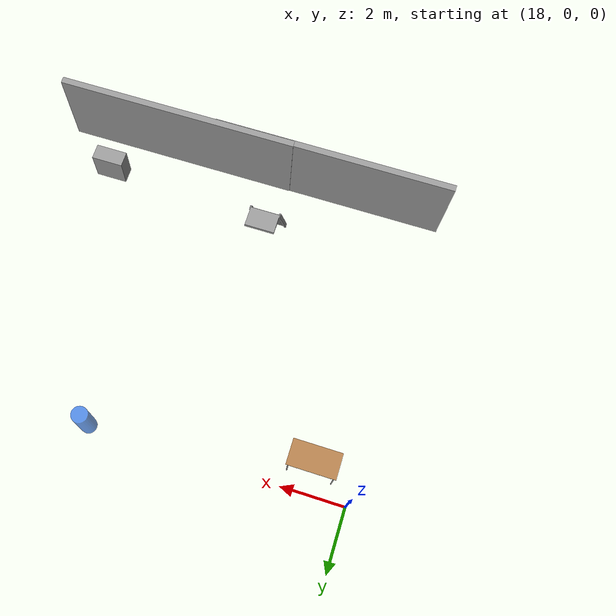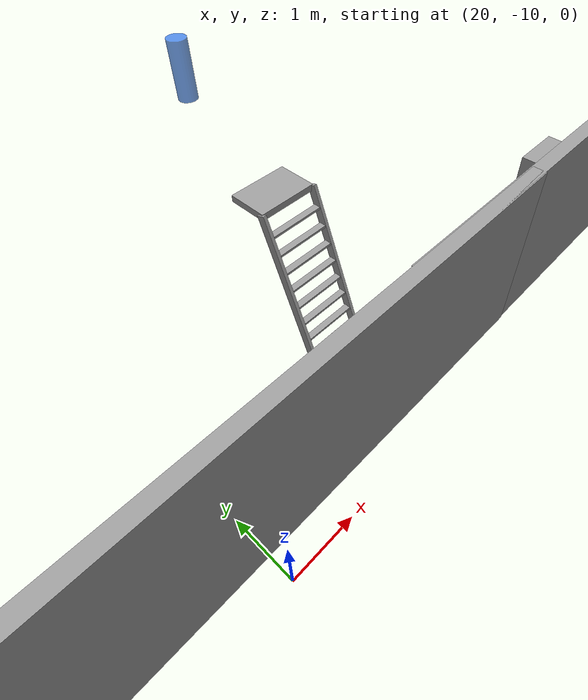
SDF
<sdf version="1.6">
 <world name="factory">
  <model name="ladder_70deg_0rails">
   <static>1</static>
   <link name="step0">
    <pose>0 0.097059 0.266667 0 -0 0</pose>
    <inertial>
     <mass>9.75482</mass>
     <inertia>
      <ixx>0.00957124</ixx>
      <iyy>0.65963</iyy>
      <izz>0.666842</izz>
      <ixy>0</ixy>
      <ixz>0</ixz>
      <iyz>0</iyz>
     </inertia>
    </inertial>
    <collision name="collision"><geometry><box><size>0.9 0.1016 0.0381</size></box></geometry></collision>
    <visual name="visual">
     <geometry><box><size>0.9 0.1016 0.0381</size></box></geometry>
     <material>
      <script><uri>file://media/materials/scripts/gazebo.material</uri><name>Gazebo/Grey</name></script>
     </material>
    </visual>
   </link>
   <link name="step1">
    <pose>0 0.194117 0.533333 0 -0 0</pose>
    <inertial>
     <mass>9.75482</mass>
     <inertia>
      <ixx>0.00957124</ixx>
      <iyy>0.65963</iyy>
      <izz>0.666842</izz>
      <ixy>0</ixy>
      <ixz>0</ixz>
      <iyz>0</iyz>
     </inertia>
    </inertial>
    <collision name="collision_2"><geometry><box><size>0.9 0.1016 0.0381</size></box></geometry></collision>
    <visual name="visual_2">
     <geometry><box><size>0.9 0.1016 0.0381</size></box></geometry>
     <material>
      <script><uri>file://media/materials/scripts/gazebo.material</uri><name>Gazebo/Grey</name></script>
     </material>
    </visual>
   </link>
   <link name="step2">
    <pose>0 0.291176 0.8 0 -0 0</pose>
    <inertial>
     <mass>9.75482</mass>
     <inertia>
      <ixx>0.00957124</ixx>
      <iyy>0.65963</iyy>
      <izz>0.666842</izz>
      <ixy>0</ixy>
      <ixz>0</ixz>
      <iyz>0</iyz>
     </inertia>
    </inertial>
    <collision name="collision_3"><geometry><box><size>0.9 0.1016 0.0381</size></box></geometry></collision>
    <visual name="visual_3">
     <geometry><box><size>0.9 0.1016 0.0381</size></box></geometry>
     <material>
      <script><uri>file://media/materials/scripts/gazebo.material</uri><name>Gazebo/Grey</name></script>
     </material>
    </visual>
   </link>
   <link name="step3">
    <pose>0 0.388235 1.06667 0 -0 0</pose>
    <inertial>
     <mass>9.75482</mass>
     <inertia>
      <ixx>0.00957124</ixx>
      <iyy>0.65963</iyy>
      <izz>0.666842</izz>
      <ixy>0</ixy>
      <ixz>0</ixz>
      <iyz>0</iyz>
     </inertia>
    </inertial>
    <collision name="collision_4"><geometry><box><size>0.9 0.1016 0.0381</size></box></geometry></collision>
    <visual name="visual_4">
     <geometry><box><size>0.9 0.1016 0.0381</size></box></geometry>
     <material>
      <script><uri>file://media/materials/scripts/gazebo.material</uri><name>Gazebo/Grey</name></script>
     </material>
    </visual>
   </link>
   <link name="step4">
    <pose>0 0.485294 1.33333 0 -0 0</pose>
    <inertial>
     <mass>9.75482</mass>
     <inertia>
      <ixx>0.00957124</ixx>
      <iyy>0.65963</iyy>
      <izz>0.666842</izz>
      <ixy>0</ixy>
      <ixz>0</ixz>
      <iyz>0</iyz>
     </inertia>
    </inertial>
    <collision name="collision_5"><geometry><box><size>0.9 0.1016 0.0381</size></box></geometry></collision>
    <visual name="visual_5">
     <geometry><box><size>0.9 0.1016 0.0381</size></box></geometry>
     <material>
      <script><uri>file://media/materials/scripts/gazebo.material</uri><name>Gazebo/Grey</name></script>
     </material>
    </visual>
   </link>
   <link name="step5">
    <pose>0 0.582352 1.6 0 -0 0</pose>
    <inertial>
     <mass>9.75482</mass>
     <inertia>
      <ixx>0.00957124</ixx>
      <iyy>0.65963</iyy>
      <izz>0.666842</izz>
      <ixy>0</ixy>
      <ixz>0</ixz>
      <iyz>0</iyz>
     </inertia>
    </inertial>
    <collision name="collision_6"><geometry><box><size>0.9 0.1016 0.0381</size></box></geometry></collision>
    <visual name="visual_6">
     <geometry><box><size>0.9 0.1016 0.0381</size></box></geometry>
     <material>
      <script><uri>file://media/materials/scripts/gazebo.material</uri><name>Gazebo/Grey</name></script>
     </material>
    </visual>
   </link>
   <link name="step6">
    <pose>0 0.679411 1.86667 0 -0 0</pose>
    <inertial>
     <mass>9.75482</mass>
     <inertia>
      <ixx>0.00957124</ixx>
      <iyy>0.65963</iyy>
      <izz>0.666842</izz>
      <ixy>0</ixy>
      <ixz>0</ixz>
      <iyz>0</iyz>
     </inertia>
    </inertial>
    <collision name="collision_7"><geometry><box><size>0.9 0.1016 0.0381</size></box></geometry></collision>
    <visual name="visual_7">
     <geometry><box><size>0.9 0.1016 0.0381</size></box></geometry>
     <material>
      <script><uri>file://media/materials/scripts/gazebo.material</uri><name>Gazebo/Grey</name></script>
     </material>
    </visual>
   </link>
   <link name="step7">
    <pose>0 0.77647 2.13333 0 -0 0</pose>
    <inertial>
     <mass>9.75482</mass>
     <inertia>
      <ixx>0.00957124</ixx>
      <iyy>0.65963</iyy>
      <izz>0.666842</izz>
      <ixy>0</ixy>
      <ixz>0</ixz>
      <iyz>0</iyz>
     </inertia>
    </inertial>
    <collision name="collision_8"><geometry><box><size>0.9 0.1016 0.0381</size></box></geometry></collision>
    <visual name="visual_8">
     <geometry><box><size>0.9 0.1016 0.0381</size></box></geometry>
     <material>
      <script><uri>file://media/materials/scripts/gazebo.material</uri><name>Gazebo/Grey</name></script>
     </material>
    </visual>
   </link>
   <link name="landing">
    <pose>0 1.17353 2.4 0 -0 0</pose>
    <inertial>
     <mass>57.6072</mass>
     <inertia><ixx>1.73518</ixx><iyy>3.89545</iyy><izz>5.6167</izz><ixy>0</ixy><ixz>0</ixz><iyz>0</iyz></inertia>
    </inertial>
    <collision name="collision_9"><geometry><box><size>0.9 0.6 0.1016</size></box></geometry></collision>
    <visual name="visual_9">
     <geometry><box><size>0.9 0.6 0.1016</size></box></geometry>
     <material>
      <script><uri>file://media/materials/scripts/gazebo.material</uri><name>Gazebo/Grey</name></script>
     </material>
    </visual>
   </link>
   <link name="left_side_wall">
    <pose>-0.45 0.436764 1.2 1.22173 -0 0</pose>
    <collision name="collision_10"><geometry><box><size>0.0508 2.63403 0.13</size></box></geometry></collision>
    <visual name="visual_10">
     <geometry><box><size>0.0508 2.63403 0.13</size></box></geometry>
     <material>
      <script><uri>file://media/materials/scripts/gazebo.material</uri><name>Gazebo/Grey</name></script>
     </material>
    </visual>
   </link>
   <link name="right_side_wall">
    <pose>0.45 0.436764 1.2 1.22173 -0 0</pose>
    <collision name="collision_11"><geometry><box><size>0.0508 2.63403 0.13</size></box></geometry></collision>
    <visual name="visual_11">
     <geometry><box><size>0.0508 2.63403 0.13</size></box></geometry>
     <material>
      <script><uri>file://media/materials/scripts/gazebo.material</uri><name>Gazebo/Grey</name></script>
     </material>
    </visual>
   </link>
   <pose>22.7475 -8.13571 0 0 -0 0</pose>
  </model>
  <model name="grey_wall_clone_1">
   <static>1</static>
   <link name="link">
    <pose>0 0 1.4 0 -0 0</pose>
    <collision name="collision"><geometry><box><size>7.5 0.2 2.8</size></box></geometry></collision>
    <visual name="visual">
     <cast_shadows>0</cast_shadows>
     <geometry><box><size>7.5 0.2 2.8</size></box></geometry>
     <material>
      <script>
       <uri>model://grey_wall/materials/scripts</uri>
       <uri>model://grey_wall/materials/textures</uri>
       <name>vrc/grey_wall</name>
      </script>
     </material>
    </visual>
   </link>
   <pose>21.3028 -9.50574 0 0 -0 0</pose>
  </model>
  <model name="grey_wall_clone_2">
   <static>1</static>
   <link name="link">
    <pose>0 0 1.4 0 -0 0</pose>
    <collision name="collision"><geometry><box><size>7.5 0.2 2.8</size></box></geometry></collision>
    <visual name="visual">
     <cast_shadows>0</cast_shadows>
     <geometry><box><size>7.5 0.2 2.8</size></box></geometry>
     <material>
      <script>
       <uri>model://grey_wall/materials/scripts</uri>
       <uri>model://grey_wall/materials/textures</uri>
       <name>vrc/grey_wall</name>
      </script>
     </material>
    </visual>
   </link>
   <pose>26.2939 -9.49059 0 0 -0 0</pose>
  </model>
  <model name="unit_box">
   <pose>28.3607 -8.3366 0.467165 0 -0 0.000112</pose>
   <link name="link">
    <inertial>
     <mass>1</mass>
     <inertia>
      <ixx>0.166667</ixx>
      <ixy>0</ixy>
      <ixz>0</ixz>
      <iyy>0.166667</iyy>
      <iyz>0</iyz>
      <izz>0.166667</izz>
     </inertia>
    </inertial>
    <collision name="collision"><geometry><box><size>1 0.487337 1.07028</size></box></geometry></collision>
    <visual name="visual">
     <geometry><box><size>1 0.487337 1.07028</size></box></geometry>
     <material>
      <script><name>Gazebo/Grey</name><uri>file://media/materials/scripts/gazebo.material</uri></script>
     </material>
    </visual>
   </link>
  </model>
  <model name="table">
   <static>1</static>
   <link name="link">
    <collision name="surface">
     <pose>0 0 1 0 -0 0</pose>
     <geometry><box><size>1.5 0.8 0.03</size></box></geometry>
     <surface><friction><ode><mu>0.6</mu><mu2>0.6</mu2></ode></friction></surface>
    </collision>
    <visual name="visual1">
     <pose>0 0 1 0 -0 0</pose>
     <geometry><box><size>1.5 0.8 0.03</size></box></geometry>
     <material>
      <script><uri>file://media/materials/scripts/gazebo.material</uri><name>Gazebo/Wood</name></script>
     </material>
    </visual>
    <collision name="front_left_leg">
     <pose>0.68 0.38 0.5 0 -0 0</pose>
     <geometry><cylinder><radius>0.02</radius><length>1</length></cylinder></geometry>
    </collision>
    <visual name="front_left_leg">
     <pose>0.68 0.38 0.5 0 -0 0</pose>
     <geometry><cylinder><radius>0.02</radius><length>1</length></cylinder></geometry>
     <material>
      <script><uri>file://media/materials/scripts/gazebo.material</uri><name>Gazebo/Grey</name></script>
     </material>
    </visual>
    <collision name="front_right_leg">
     <pose>0.68 -0.38 0.5 0 -0 0</pose>
     <geometry><cylinder><radius>0.02</radius><length>1</length></cylinder></geometry>
    </collision>
    <visual name="front_right_leg">
     <pose>0.68 -0.38 0.5 0 -0 0</pose>
     <geometry><cylinder><radius>0.02</radius><length>1</length></cylinder></geometry>
     <material>
      <script><uri>file://media/materials/scripts/gazebo.material</uri><name>Gazebo/Grey</name></script>
     </material>
    </visual>
    <collision name="back_right_leg">
     <pose>-0.68 -0.38 0.5 0 -0 0</pose>
     <geometry><cylinder><radius>0.02</radius><length>1</length></cylinder></geometry>
    </collision>
    <visual name="back_right_leg">
     <pose>-0.68 -0.38 0.5 0 -0 0</pose>
     <geometry><cylinder><radius>0.02</radius><length>1</length></cylinder></geometry>
     <material>
      <script><uri>file://media/materials/scripts/gazebo.material</uri><name>Gazebo/Grey</name></script>
     </material>
    </visual>
    <collision name="back_left_leg">
     <pose>-0.68 0.38 0.5 0 -0 0</pose>
     <geometry><cylinder><radius>0.02</radius><length>1</length></cylinder></geometry>
    </collision>
    <visual name="back_left_leg">
     <pose>-0.68 0.38 0.5 0 -0 0</pose>
     <geometry><cylinder><radius>0.02</radius><length>1</length></cylinder></geometry>
     <material>
      <script><uri>file://media/materials/scripts/gazebo.material</uri><name>Gazebo/Grey</name></script>
     </material>
    </visual>
   </link>
   <pose>19.256 -0.907717 0 0 -0 0</pose>
  </model>
  <model name="goal_east">
   <static>true</static>
   <pose>26 0 0.75 0 0 0</pose>
   <link name="link">
    <visual name="visual">
     <geometry><cylinder><radius>0.25</radius><length>1.5</length></cylinder></geometry>
     <material><ambient>0.1 0.4 0.9 0.7</ambient><diffuse>0.1 0.4 0.9 0.7</diffuse></material>
    </visual>
   </link>
  </model>
 </world>
</sdf>
